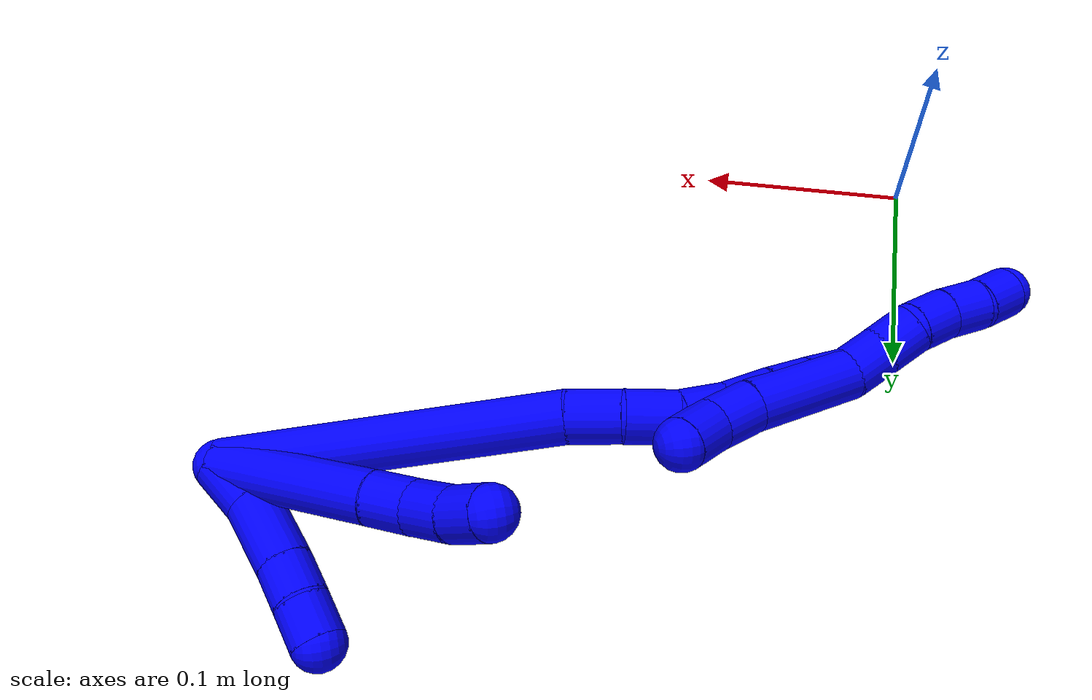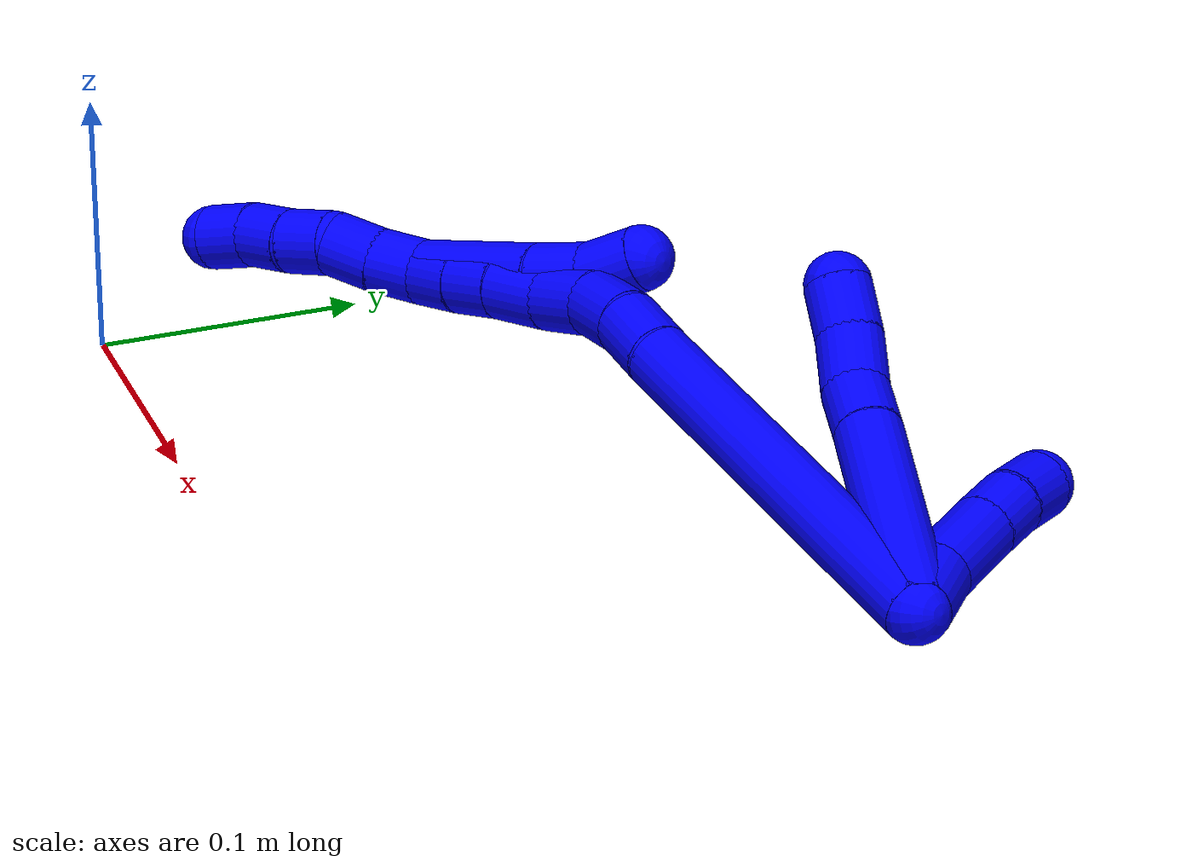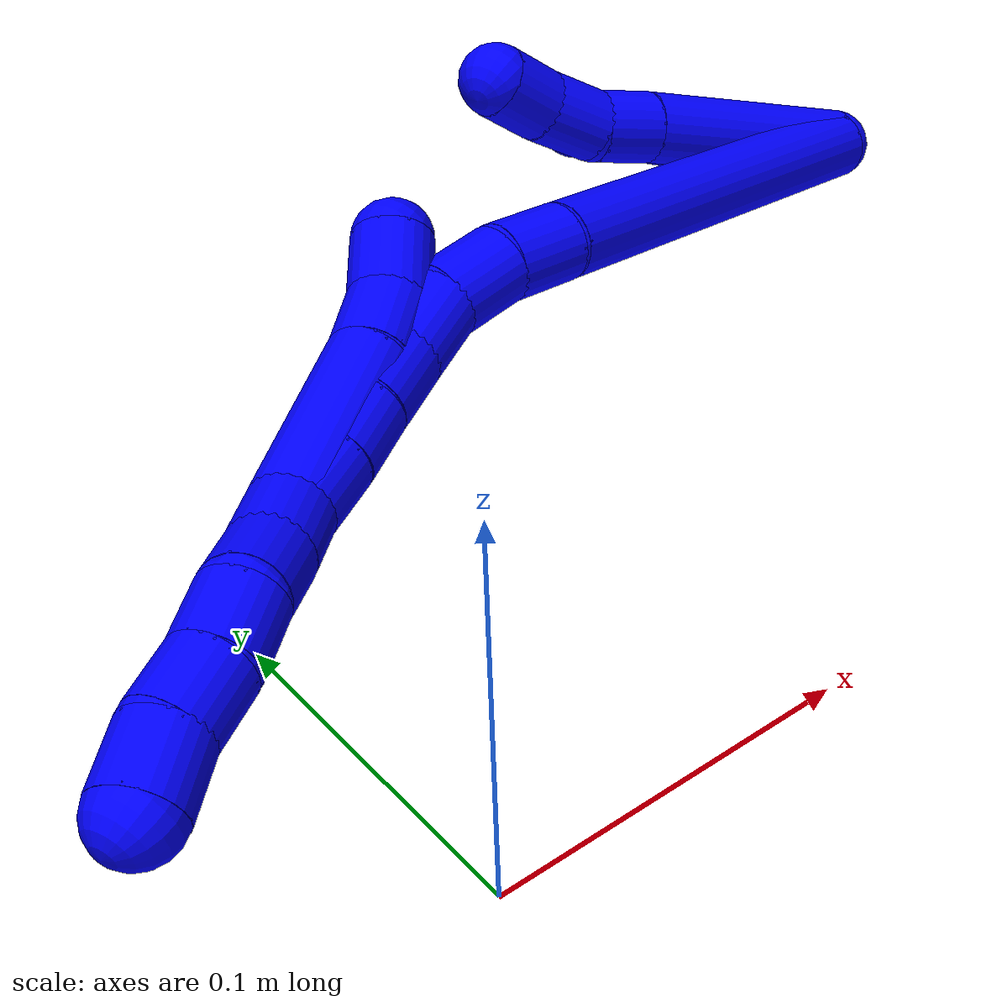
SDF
<sdf version="1.7">
 <world name="default">
  <plugin name="TubeGeneratorPlugin" filename="libtube_generator_plugin.so"/>
  <model name="photoneo_s_sensor">
   <static>1</static>
   <pose>0 0 2 1.57079 1.57079 3.14159</pose>
   <link name="link">
    <inertial><mass>0.1</mass></inertial>
    <sensor name="sensor" type="depth">
     <update_rate>30</update_rate>
     <camera>
      <horizontal_fov>1.22</horizontal_fov>
      <image><width>1920</width><height>1200</height><format>B8G8R8</format></image>
      <clip><near>0.1</near><far>4</far></clip>
      <depth_camera><output>points</output></depth_camera>
     </camera>
     <plugin name="camera_plugin" filename="libgazebo_ros_depth_camera.so">
      <baseline>0.2</baseline>
      <alwaysOn>1</alwaysOn>
      <updateRate>0.0</updateRate>
      <cameraName>camera_ir</cameraName>
      <imageTopicName>/camera/color/image_raw</imageTopicName>
      <cameraInfoTopicName>/camera/color/camera_info</cameraInfoTopicName>
      <depthImageTopicName>/camera/depth/image_raw</depthImageTopicName>
      <depthImageCameraInfoTopicName>/camera/depth/camera_info</depthImageCameraInfoTopicName>
      <pointCloudTopicName>/camera/depth/points</pointCloudTopicName>
      <frameName>fr_optical</frameName>
      <pointCloudCutoff>0.1</pointCloudCutoff>
      <pointCloudCutoffMax>2.0</pointCloudCutoffMax>
      <distortionK1>0</distortionK1>
      <distortionK2>0</distortionK2>
      <distortionK3>0</distortionK3>
      <distortionT1>0</distortionT1>
      <distortionT2>0</distortionT2>
      <CxPrime>0</CxPrime>
      <Cx>0</Cx>
      <Cy>0</Cy>
      <focalLength>0</focalLength>
      <hackBaseline>0</hackBaseline>
     </plugin>
    </sensor>
   </link>
  </model>
  <gravity>0 0 -9.8</gravity>
  <magnetic_field>6e-06 2.3e-05 -4.2e-05</magnetic_field>
  <atmosphere type="adiabatic"/>
  <physics name="default_physics" default="0" type="ode">
   <max_step_size>0.003</max_step_size>
   <real_time_factor>1</real_time_factor>
   <real_time_update_rate>1000</real_time_update_rate>
   <max_contacts>10000</max_contacts>
   <ode>
    <solver>
     <type>quick</type>
     <iters>100</iters>
     <sor>1.3</sor>
     <use_dynamic_moi_rescaling>0</use_dynamic_moi_rescaling>
    </solver>
    <constraints>
     <contact_max_correcting_vel>0</contact_max_correcting_vel>
     <contact_surface_layer>0.001</contact_surface_layer>
     <cfm>0</cfm>
     <erp>0.2</erp>
    </constraints>
   </ode>
  </physics>
  <scene><ambient>0.4 0.4 0.4 1</ambient><background>0.7 0.7 0.7 1</background><shadows>0</shadows></scene>
  <audio><device>default</device></audio>
  <spherical_coordinates>
   <surface_model>EARTH_WGS84</surface_model>
   <latitude_deg>0</latitude_deg>
   <longitude_deg>0</longitude_deg>
   <elevation>0</elevation>
   <heading_deg>0</heading_deg>
  </spherical_coordinates>
  <model name="bin">
   <static>1</static>
   <link name="bottom">
    <collision name="collision-bottom">
     <pose>0 0 -0.01 0 -0 0</pose>
     <geometry><box><size>0.8 0.6 0.02</size></box></geometry>
     <surface>
      <friction><ode><mu>100</mu><mu2>100</mu2></ode></friction>
      <contact><collide_bitmask>65535</collide_bitmask></contact>
     </surface>
    </collision>
   </link>
   <link name="west_wall">
    <collision name="collision-west_wall">
     <pose>-0.41 0 0.1 0 -0 0</pose>
     <geometry><box><size>0.02 0.6 0.2</size></box></geometry>
     <surface>
      <friction><ode><mu>100</mu><mu2>100</mu2></ode></friction>
      <contact><collide_bitmask>65535</collide_bitmask></contact>
     </surface>
    </collision>
   </link>
   <link name="east_wall">
    <collision name="collision-east_wall">
     <pose>0.41 0 0.1 0 -0 0</pose>
     <geometry><box><size>0.02 0.6 0.2</size></box></geometry>
     <surface>
      <friction><ode><mu>100</mu><mu2>100</mu2></ode></friction>
      <contact><collide_bitmask>65535</collide_bitmask></contact>
     </surface>
    </collision>
   </link>
   <link name="south_wall">
    <collision name="collision-south_wall">
     <pose>0 -0.31 0.1 0 -0 0</pose>
     <geometry><box><size>0.8 0.02 0.2</size></box></geometry>
     <surface>
      <friction><ode><mu>100</mu><mu2>100</mu2></ode></friction>
      <contact><collide_bitmask>65535</collide_bitmask></contact>
     </surface>
    </collision>
   </link>
   <link name="north_wall">
    <collision name="collision-north_wall">
     <pose>0 0.31 0.1 0 -0 0</pose>
     <geometry><box><size>0.8 0.02 0.2</size></box></geometry>
     <surface>
      <friction><ode><mu>100</mu><mu2>100</mu2></ode></friction>
      <contact><collide_bitmask>65535</collide_bitmask></contact>
     </surface>
    </collision>
   </link>
  </model>
  <model name="1">
   <static>0</static>
   <link name="1">
    <collision name="collision-cylinder-e_1_2_8">
     <pose>-0.018654 0.023239 -0.029967 -2.48197 -0.457161 1.19385</pose>
     <geometry><cylinder><radius>0.0125</radius><length>0.084523</length></cylinder></geometry>
     <surface>
      <friction><ode><mu>1.16</mu><mu2>1.16</mu2><slip1>0</slip1><slip2>0</slip2></ode></friction>
      <contact><ode><kp>1e+06</kp><kd>1</kd><max_vel>0</max_vel><min_depth>0.001</min_depth></ode></contact>
     </surface>
    </collision>
    <visual name="visual-cylinder-e_1_2_8">
     <pose>-0.018654 0.023239 -0.029967 -2.48197 -0.457161 1.19385</pose>
     <geometry><cylinder><radius>0.0125</radius><length>0.084523</length></cylinder></geometry>
     <material><ambient>0 0 1 1</ambient></material>
    </visual>
    <collision name="collision-cylinder-e_2_8_9">
     <pose>-0.041616 0.052431 -0.068001 -2.50587 -0.405738 1.11747</pose>
     <geometry><cylinder><radius>0.0125</radius><length>0.021823</length></cylinder></geometry>
     <surface>
      <friction><ode><mu>1.16</mu><mu2>1.16</mu2><slip1>0</slip1><slip2>0</slip2></ode></friction>
      <contact><ode><kp>1e+06</kp><kd>1</kd><max_vel>0</max_vel><min_depth>0.001</min_depth></ode></contact>
     </surface>
    </collision>
    <visual name="visual-cylinder-e_2_8_9">
     <pose>-0.041616 0.052431 -0.068001 -2.50587 -0.405738 1.11747</pose>
     <geometry><cylinder><radius>0.0125</radius><length>0.021823</length></cylinder></geometry>
     <material><ambient>0 0 1 1</ambient></material>
    </visual>
    <collision name="collision-cylinder-e_3_9_10">
     <pose>-0.05306 0.064677 -0.082305 -2.35177 -0.678122 1.40451</pose>
     <geometry><cylinder><radius>0.0125</radius><length>0.022754</length></cylinder></geometry>
     <surface>
      <friction><ode><mu>1.16</mu><mu2>1.16</mu2><slip1>0</slip1><slip2>0</slip2></ode></friction>
      <contact><ode><kp>1e+06</kp><kd>1</kd><max_vel>0</max_vel><min_depth>0.001</min_depth></ode></contact>
     </surface>
    </collision>
    <visual name="visual-cylinder-e_3_9_10">
     <pose>-0.05306 0.064677 -0.082305 -2.35177 -0.678122 1.40451</pose>
     <geometry><cylinder><radius>0.0125</radius><length>0.022754</length></cylinder></geometry>
     <material><ambient>0 0 1 1</ambient></material>
    </visual>
    <collision name="collision-cylinder-e_4_10_6">
     <pose>-0.067853 0.075289 -0.094191 -2.48874 -0.822252 1.82108</pose>
     <geometry><cylinder><radius>0.0125</radius><length>0.020899</length></cylinder></geometry>
     <surface>
      <friction><ode><mu>1.16</mu><mu2>1.16</mu2><slip1>0</slip1><slip2>0</slip2></ode></friction>
      <contact><ode><kp>1e+06</kp><kd>1</kd><max_vel>0</max_vel><min_depth>0.001</min_depth></ode></contact>
     </surface>
    </collision>
    <visual name="visual-cylinder-e_4_10_6">
     <pose>-0.067853 0.075289 -0.094191 -2.48874 -0.822252 1.82108</pose>
     <geometry><cylinder><radius>0.0125</radius><length>0.020899</length></cylinder></geometry>
     <material><ambient>0 0 1 1</ambient></material>
    </visual>
    <collision name="collision-cylinder-e_1_2_11">
     <pose>-0.000915 0.011283 -0.005737 -2.04123 -0.072135 0.117524</pose>
     <geometry><cylinder><radius>0.0125</radius><length>0.025382</length></cylinder></geometry>
     <surface>
      <friction><ode><mu>1.16</mu><mu2>1.16</mu2><slip1>0</slip1><slip2>0</slip2></ode></friction>
      <contact><ode><kp>1e+06</kp><kd>1</kd><max_vel>0</max_vel><min_depth>0.001</min_depth></ode></contact>
     </surface>
    </collision>
    <visual name="visual-cylinder-e_1_2_11">
     <pose>-0.000915 0.011283 -0.005737 -2.04123 -0.072135 0.117524</pose>
     <geometry><cylinder><radius>0.0125</radius><length>0.025382</length></cylinder></geometry>
     <material><ambient>0 0 1 1</ambient></material>
    </visual>
    <collision name="collision-cylinder-e_2_11_12">
     <pose>-0.003101 0.039168 -0.016085 -1.84166 -0.073657 0.096866</pose>
     <geometry><cylinder><radius>0.0125</radius><length>0.034555</length></cylinder></geometry>
     <surface>
      <friction><ode><mu>1.16</mu><mu2>1.16</mu2><slip1>0</slip1><slip2>0</slip2></ode></friction>
      <contact><ode><kp>1e+06</kp><kd>1</kd><max_vel>0</max_vel><min_depth>0.001</min_depth></ode></contact>
     </surface>
    </collision>
    <visual name="visual-cylinder-e_2_11_12">
     <pose>-0.003101 0.039168 -0.016085 -1.84166 -0.073657 0.096866</pose>
     <geometry><cylinder><radius>0.0125</radius><length>0.034555</length></cylinder></geometry>
     <material><ambient>0 0 1 1</ambient></material>
    </visual>
    <collision name="collision-cylinder-e_3_12_13">
     <pose>-0.005188 0.065502 -0.022865 -1.7901 -0.081682 0.101861</pose>
     <geometry><cylinder><radius>0.0125</radius><length>0.020007</length></cylinder></geometry>
     <surface>
      <friction><ode><mu>1.16</mu><mu2>1.16</mu2><slip1>0</slip1><slip2>0</slip2></ode></friction>
      <contact><ode><kp>1e+06</kp><kd>1</kd><max_vel>0</max_vel><min_depth>0.001</min_depth></ode></contact>
     </surface>
    </collision>
    <visual name="visual-cylinder-e_3_12_13">
     <pose>-0.005188 0.065502 -0.022865 -1.7901 -0.081682 0.101861</pose>
     <geometry><cylinder><radius>0.0125</radius><length>0.020007</length></cylinder></geometry>
     <material><ambient>0 0 1 1</ambient></material>
    </visual>
    <collision name="collision-cylinder-e_4_13_5">
     <pose>-0.005488 0.084997 -0.027263 -1.79533 0.05155 -0.064642</pose>
     <geometry><cylinder><radius>0.0125</radius><length>0.020056</length></cylinder></geometry>
     <surface>
      <friction><ode><mu>1.16</mu><mu2>1.16</mu2><slip1>0</slip1><slip2>0</slip2></ode></friction>
      <contact><ode><kp>1e+06</kp><kd>1</kd><max_vel>0</max_vel><min_depth>0.001</min_depth></ode></contact>
     </surface>
    </collision>
    <visual name="visual-cylinder-e_4_13_5">
     <pose>-0.005488 0.084997 -0.027263 -1.79533 0.05155 -0.064642</pose>
     <geometry><cylinder><radius>0.0125</radius><length>0.020056</length></cylinder></geometry>
     <material><ambient>0 0 1 1</ambient></material>
    </visual>
    <collision name="collision-cylinder-e_1_2_14">
     <pose>-0.029182 0.016294 -0.073912 -2.92461 -0.367996 2.08257</pose>
     <geometry><cylinder><radius>0.0125</radius><length>0.162235</length></cylinder></geometry>
     <surface>
      <friction><ode><mu>1.16</mu><mu2>1.16</mu2><slip1>0</slip1><slip2>0</slip2></ode></friction>
      <contact><ode><kp>1e+06</kp><kd>1</kd><max_vel>0</max_vel><min_depth>0.001</min_depth></ode></contact>
     </surface>
    </collision>
    <visual name="visual-cylinder-e_1_2_14">
     <pose>-0.029182 0.016294 -0.073912 -2.92461 -0.367996 2.08257</pose>
     <geometry><cylinder><radius>0.0125</radius><length>0.162235</length></cylinder></geometry>
     <material><ambient>0 0 1 1</ambient></material>
    </visual>
    <collision name="collision-cylinder-e_2_14_15">
     <pose>-0.06186 0.036496 -0.159292 -2.81319 -0.280964 1.41301</pose>
     <geometry><cylinder><radius>0.0125</radius><length>0.025221</length></cylinder></geometry>
     <surface>
      <friction><ode><mu>1.16</mu><mu2>1.16</mu2><slip1>0</slip1><slip2>0</slip2></ode></friction>
      <contact><ode><kp>1e+06</kp><kd>1</kd><max_vel>0</max_vel><min_depth>0.001</min_depth></ode></contact>
     </surface>
    </collision>
    <visual name="visual-cylinder-e_2_14_15">
     <pose>-0.06186 0.036496 -0.159292 -2.81319 -0.280964 1.41301</pose>
     <geometry><cylinder><radius>0.0125</radius><length>0.025221</length></cylinder></geometry>
     <material><ambient>0 0 1 1</ambient></material>
    </visual>
    <collision name="collision-cylinder-e_3_15_16">
     <pose>-0.066666 0.043412 -0.182704 -2.89486 -0.105931 0.808065</pose>
     <geometry><cylinder><radius>0.0125</radius><length>0.024772</length></cylinder></geometry>
     <surface>
      <friction><ode><mu>1.16</mu><mu2>1.16</mu2><slip1>0</slip1><slip2>0</slip2></ode></friction>
      <contact><ode><kp>1e+06</kp><kd>1</kd><max_vel>0</max_vel><min_depth>0.001</min_depth></ode></contact>
     </surface>
    </collision>
    <visual name="visual-cylinder-e_3_15_16">
     <pose>-0.066666 0.043412 -0.182704 -2.89486 -0.105931 0.808065</pose>
     <geometry><cylinder><radius>0.0125</radius><length>0.024772</length></cylinder></geometry>
     <material><ambient>0 0 1 1</ambient></material>
    </visual>
    <collision name="collision-cylinder-e_4_16_17">
     <pose>-0.067637 0.046038 -0.206472 3.10934 0.028624 1.45185</pose>
     <geometry><cylinder><radius>0.0125</radius><length>0.02367</length></cylinder></geometry>
     <surface>
      <friction><ode><mu>1.16</mu><mu2>1.16</mu2><slip1>0</slip1><slip2>0</slip2></ode></friction>
      <contact><ode><kp>1e+06</kp><kd>1</kd><max_vel>0</max_vel><min_depth>0.001</min_depth></ode></contact>
     </surface>
    </collision>
    <visual name="visual-cylinder-e_4_16_17">
     <pose>-0.067637 0.046038 -0.206472 3.10934 0.028624 1.45185</pose>
     <geometry><cylinder><radius>0.0125</radius><length>0.02367</length></cylinder></geometry>
     <material><ambient>0 0 1 1</ambient></material>
    </visual>
    <collision name="collision-cylinder-e_5_17_18">
     <pose>-0.068502 0.044159 -0.229839 3.01259 -0.103019 -1.34723</pose>
     <geometry><cylinder><radius>0.0125</radius><length>0.023403</length></cylinder></geometry>
     <surface>
      <friction><ode><mu>1.16</mu><mu2>1.16</mu2><slip1>0</slip1><slip2>0</slip2></ode></friction>
      <contact><ode><kp>1e+06</kp><kd>1</kd><max_vel>0</max_vel><min_depth>0.001</min_depth></ode></contact>
     </surface>
    </collision>
    <visual name="visual-cylinder-e_5_17_18">
     <pose>-0.068502 0.044159 -0.229839 3.01259 -0.103019 -1.34723</pose>
     <geometry><cylinder><radius>0.0125</radius><length>0.023403</length></cylinder></geometry>
     <material><ambient>0 0 1 1</ambient></material>
    </visual>
    <collision name="collision-cylinder-e_6_18_19">
     <pose>-0.069874 0.041561 -0.251455 3.03271 -0.016713 -0.304334</pose>
     <geometry><cylinder><radius>0.0125</radius><length>0.020269</length></cylinder></geometry>
     <surface>
      <friction><ode><mu>1.16</mu><mu2>1.16</mu2><slip1>0</slip1><slip2>0</slip2></ode></friction>
      <contact><ode><kp>1e+06</kp><kd>1</kd><max_vel>0</max_vel><min_depth>0.001</min_depth></ode></contact>
     </surface>
    </collision>
    <visual name="visual-cylinder-e_6_18_19">
     <pose>-0.069874 0.041561 -0.251455 3.03271 -0.016713 -0.304334</pose>
     <geometry><cylinder><radius>0.0125</radius><length>0.020269</length></cylinder></geometry>
     <material><ambient>0 0 1 1</ambient></material>
    </visual>
    <collision name="collision-cylinder-e_7_19_1">
     <pose>-0.070658 0.039862 -0.271707 3.08297 -0.060205 -1.5975</pose>
     <geometry><cylinder><radius>0.0125</radius><length>0.020429</length></cylinder></geometry>
     <surface>
      <friction><ode><mu>1.16</mu><mu2>1.16</mu2><slip1>0</slip1><slip2>0</slip2></ode></friction>
      <contact><ode><kp>1e+06</kp><kd>1</kd><max_vel>0</max_vel><min_depth>0.001</min_depth></ode></contact>
     </surface>
    </collision>
    <visual name="visual-cylinder-e_7_19_1">
     <pose>-0.070658 0.039862 -0.271707 3.08297 -0.060205 -1.5975</pose>
     <geometry><cylinder><radius>0.0125</radius><length>0.020429</length></cylinder></geometry>
     <material><ambient>0 0 1 1</ambient></material>
    </visual>
    <collision name="collision-cylinder-e_1_1_20">
     <pose>-0.073708 0.035888 -0.290978 2.78599 -0.245957 -1.20502</pose>
     <geometry><cylinder><radius>0.0125</radius><length>0.02</length></cylinder></geometry>
     <surface>
      <friction><ode><mu>1.16</mu><mu2>1.16</mu2><slip1>0</slip1><slip2>0</slip2></ode></friction>
      <contact><ode><kp>1e+06</kp><kd>1</kd><max_vel>0</max_vel><min_depth>0.001</min_depth></ode></contact>
     </surface>
    </collision>
    <visual name="visual-cylinder-e_1_1_20">
     <pose>-0.073708 0.035888 -0.290978 2.78599 -0.245957 -1.20502</pose>
     <geometry><cylinder><radius>0.0125</radius><length>0.02</length></cylinder></geometry>
     <material><ambient>0 0 1 1</ambient></material>
    </visual>
    <collision name="collision-cylinder-e_2_20_21">
     <pose>-0.079574 0.029382 -0.308927 2.80194 -0.35023 -1.60209</pose>
     <geometry><cylinder><radius>0.0125</radius><length>0.02</length></cylinder></geometry>
     <surface>
      <friction><ode><mu>1.16</mu><mu2>1.16</mu2><slip1>0</slip1><slip2>0</slip2></ode></friction>
      <contact><ode><kp>1e+06</kp><kd>1</kd><max_vel>0</max_vel><min_depth>0.001</min_depth></ode></contact>
     </surface>
    </collision>
    <visual name="visual-cylinder-e_2_20_21">
     <pose>-0.079574 0.029382 -0.308927 2.80194 -0.35023 -1.60209</pose>
     <geometry><cylinder><radius>0.0125</radius><length>0.02</length></cylinder></geometry>
     <material><ambient>0 0 1 1</ambient></material>
    </visual>
    <collision name="collision-cylinder-e_3_21_22">
     <pose>-0.083121 0.023688 -0.327448 2.88218 -0.01157 -0.088645</pose>
     <geometry><cylinder><radius>0.0125</radius><length>0.02</length></cylinder></geometry>
     <surface>
      <friction><ode><mu>1.16</mu><mu2>1.16</mu2><slip1>0</slip1><slip2>0</slip2></ode></friction>
      <contact><ode><kp>1e+06</kp><kd>1</kd><max_vel>0</max_vel><min_depth>0.001</min_depth></ode></contact>
     </surface>
    </collision>
    <visual name="visual-cylinder-e_3_21_22">
     <pose>-0.083121 0.023688 -0.327448 2.88218 -0.01157 -0.088645</pose>
     <geometry><cylinder><radius>0.0125</radius><length>0.02</length></cylinder></geometry>
     <material><ambient>0 0 1 1</ambient></material>
    </visual>
    <collision name="collision-cylinder-e_4_22_23">
     <pose>-0.083725 0.020089 -0.347047 3.03784 -0.048876 -0.879993</pose>
     <geometry><cylinder><radius>0.0125</radius><length>0.02</length></cylinder></geometry>
     <surface>
      <friction><ode><mu>1.16</mu><mu2>1.16</mu2><slip1>0</slip1><slip2>0</slip2></ode></friction>
      <contact><ode><kp>1e+06</kp><kd>1</kd><max_vel>0</max_vel><min_depth>0.001</min_depth></ode></contact>
     </surface>
    </collision>
    <visual name="visual-cylinder-e_4_22_23">
     <pose>-0.083725 0.020089 -0.347047 3.03784 -0.048876 -0.879993</pose>
     <geometry><cylinder><radius>0.0125</radius><length>0.02</length></cylinder></geometry>
     <material><ambient>0 0 1 1</ambient></material>
    </visual>
    <collision name="collision-cylinder-e_5_23_4">
     <pose>-0.083486 0.016202 -0.366538 2.85153 0.072822 0.488836</pose>
     <geometry><cylinder><radius>0.0125</radius><length>0.02</length></cylinder></geometry>
     <surface>
      <friction><ode><mu>1.16</mu><mu2>1.16</mu2><slip1>0</slip1><slip2>0</slip2></ode></friction>
      <contact><ode><kp>1e+06</kp><kd>1</kd><max_vel>0</max_vel><min_depth>0.001</min_depth></ode></contact>
     </surface>
    </collision>
    <visual name="visual-cylinder-e_5_23_4">
     <pose>-0.083486 0.016202 -0.366538 2.85153 0.072822 0.488836</pose>
     <geometry><cylinder><radius>0.0125</radius><length>0.02</length></cylinder></geometry>
     <material><ambient>0 0 1 1</ambient></material>
    </visual>
    <collision name="collision-cylinder-e_1_1_24">
     <pose>-0.072296 0.044238 -0.254531 -0.17983 -0.036773 0.003316</pose>
     <geometry><cylinder><radius>0.0125</radius><length>0.055645</length></cylinder></geometry>
     <surface>
      <friction><ode><mu>1.16</mu><mu2>1.16</mu2><slip1>0</slip1><slip2>0</slip2></ode></friction>
      <contact><ode><kp>1e+06</kp><kd>1</kd><max_vel>0</max_vel><min_depth>0.001</min_depth></ode></contact>
     </surface>
    </collision>
    <visual name="visual-cylinder-e_1_1_24">
     <pose>-0.072296 0.044238 -0.254531 -0.17983 -0.036773 0.003316</pose>
     <geometry><cylinder><radius>0.0125</radius><length>0.055645</length></cylinder></geometry>
     <material><ambient>0 0 1 1</ambient></material>
    </visual>
    <collision name="collision-cylinder-e_2_24_25">
     <pose>-0.073668 0.052564 -0.216463 -0.303323 -0.031126 0.004758</pose>
     <geometry><cylinder><radius>0.0125</radius><length>0.02246</length></cylinder></geometry>
     <surface>
      <friction><ode><mu>1.16</mu><mu2>1.16</mu2><slip1>0</slip1><slip2>0</slip2></ode></friction>
      <contact><ode><kp>1e+06</kp><kd>1</kd><max_vel>0</max_vel><min_depth>0.001</min_depth></ode></contact>
     </surface>
    </collision>
    <visual name="visual-cylinder-e_2_24_25">
     <pose>-0.073668 0.052564 -0.216463 -0.303323 -0.031126 0.004758</pose>
     <geometry><cylinder><radius>0.0125</radius><length>0.02246</length></cylinder></geometry>
     <material><ambient>0 0 1 1</ambient></material>
    </visual>
    <collision name="collision-cylinder-e_3_25_3">
     <pose>-0.07698 0.060609 -0.196314 -0.461404 -0.274048 0.064753</pose>
     <geometry><cylinder><radius>0.0125</radius><length>0.021895</length></cylinder></geometry>
     <surface>
      <friction><ode><mu>1.16</mu><mu2>1.16</mu2><slip1>0</slip1><slip2>0</slip2></ode></friction>
      <contact><ode><kp>1e+06</kp><kd>1</kd><max_vel>0</max_vel><min_depth>0.001</min_depth></ode></contact>
     </surface>
    </collision>
    <visual name="visual-cylinder-e_3_25_3">
     <pose>-0.07698 0.060609 -0.196314 -0.461404 -0.274048 0.064753</pose>
     <geometry><cylinder><radius>0.0125</radius><length>0.021895</length></cylinder></geometry>
     <material><ambient>0 0 1 1</ambient></material>
    </visual>
    <collision name="collision-sphere-3">
     <pose>-0.079943 0.065301 -0.186877 0 -0 0</pose>
     <geometry><sphere><radius>0.0125</radius></sphere></geometry>
     <surface>
      <friction><ode><mu>1.16</mu><mu2>1.16</mu2><slip1>0</slip1><slip2>0</slip2></ode></friction>
      <contact><ode><kp>1e+06</kp><kd>1</kd><max_vel>0</max_vel><min_depth>0.001</min_depth></ode></contact>
     </surface>
    </collision>
    <visual name="visual-sphere-3">
     <pose>-0.079943 0.065301 -0.186877 0 -0 0</pose>
     <geometry><sphere><radius>0.0125</radius></sphere></geometry>
     <material><ambient>0 0 1 1</ambient></material>
    </visual>
    <collision name="collision-sphere-25">
     <pose>-0.074018 0.055917 -0.205751 0 -0 0</pose>
     <geometry><sphere><radius>0.0125</radius></sphere></geometry>
     <surface>
      <friction><ode><mu>1.16</mu><mu2>1.16</mu2><slip1>0</slip1><slip2>0</slip2></ode></friction>
      <contact><ode><kp>1e+06</kp><kd>1</kd><max_vel>0</max_vel><min_depth>0.001</min_depth></ode></contact>
     </surface>
    </collision>
    <visual name="visual-sphere-25">
     <pose>-0.074018 0.055917 -0.205751 0 -0 0</pose>
     <geometry><sphere><radius>0.0125</radius></sphere></geometry>
     <material><ambient>0 0 1 1</ambient></material>
    </visual>
    <collision name="collision-sphere-24">
     <pose>-0.073319 0.049211 -0.227175 0 -0 0</pose>
     <geometry><sphere><radius>0.0125</radius></sphere></geometry>
     <surface>
      <friction><ode><mu>1.16</mu><mu2>1.16</mu2><slip1>0</slip1><slip2>0</slip2></ode></friction>
      <contact><ode><kp>1e+06</kp><kd>1</kd><max_vel>0</max_vel><min_depth>0.001</min_depth></ode></contact>
     </surface>
    </collision>
    <visual name="visual-sphere-24">
     <pose>-0.073319 0.049211 -0.227175 0 -0 0</pose>
     <geometry><sphere><radius>0.0125</radius></sphere></geometry>
     <material><ambient>0 0 1 1</ambient></material>
    </visual>
    <collision name="collision-sphere-4">
     <pose>-0.082758 0.013349 -0.376095 0 -0 0</pose>
     <geometry><sphere><radius>0.0125</radius></sphere></geometry>
     <surface>
      <friction><ode><mu>1.16</mu><mu2>1.16</mu2><slip1>0</slip1><slip2>0</slip2></ode></friction>
      <contact><ode><kp>1e+06</kp><kd>1</kd><max_vel>0</max_vel><min_depth>0.001</min_depth></ode></contact>
     </surface>
    </collision>
    <visual name="visual-sphere-4">
     <pose>-0.082758 0.013349 -0.376095 0 -0 0</pose>
     <geometry><sphere><radius>0.0125</radius></sphere></geometry>
     <material><ambient>0 0 1 1</ambient></material>
    </visual>
    <collision name="collision-sphere-23">
     <pose>-0.084213 0.019054 -0.356981 0 -0 0</pose>
     <geometry><sphere><radius>0.0125</radius></sphere></geometry>
     <surface>
      <friction><ode><mu>1.16</mu><mu2>1.16</mu2><slip1>0</slip1><slip2>0</slip2></ode></friction>
      <contact><ode><kp>1e+06</kp><kd>1</kd><max_vel>0</max_vel><min_depth>0.001</min_depth></ode></contact>
     </surface>
    </collision>
    <visual name="visual-sphere-23">
     <pose>-0.084213 0.019054 -0.356981 0 -0 0</pose>
     <geometry><sphere><radius>0.0125</radius></sphere></geometry>
     <material><ambient>0 0 1 1</ambient></material>
    </visual>
    <collision name="collision-sphere-22">
     <pose>-0.083236 0.021123 -0.337113 0 -0 0</pose>
     <geometry><sphere><radius>0.0125</radius></sphere></geometry>
     <surface>
      <friction><ode><mu>1.16</mu><mu2>1.16</mu2><slip1>0</slip1><slip2>0</slip2></ode></friction>
      <contact><ode><kp>1e+06</kp><kd>1</kd><max_vel>0</max_vel><min_depth>0.001</min_depth></ode></contact>
     </surface>
    </collision>
    <visual name="visual-sphere-22">
     <pose>-0.083236 0.021123 -0.337113 0 -0 0</pose>
     <geometry><sphere><radius>0.0125</radius></sphere></geometry>
     <material><ambient>0 0 1 1</ambient></material>
    </visual>
    <collision name="collision-sphere-21">
     <pose>-0.083005 0.026253 -0.317783 0 -0 0</pose>
     <geometry><sphere><radius>0.0125</radius></sphere></geometry>
     <surface>
      <friction><ode><mu>1.16</mu><mu2>1.16</mu2><slip1>0</slip1><slip2>0</slip2></ode></friction>
      <contact><ode><kp>1e+06</kp><kd>1</kd><max_vel>0</max_vel><min_depth>0.001</min_depth></ode></contact>
     </surface>
    </collision>
    <visual name="visual-sphere-21">
     <pose>-0.083005 0.026253 -0.317783 0 -0 0</pose>
     <geometry><sphere><radius>0.0125</radius></sphere></geometry>
     <material><ambient>0 0 1 1</ambient></material>
    </visual>
    <collision name="collision-sphere-20">
     <pose>-0.076143 0.032512 -0.30007 0 -0 0</pose>
     <geometry><sphere><radius>0.0125</radius></sphere></geometry>
     <surface>
      <friction><ode><mu>1.16</mu><mu2>1.16</mu2><slip1>0</slip1><slip2>0</slip2></ode></friction>
      <contact><ode><kp>1e+06</kp><kd>1</kd><max_vel>0</max_vel><min_depth>0.001</min_depth></ode></contact>
     </surface>
    </collision>
    <visual name="visual-sphere-20">
     <pose>-0.076143 0.032512 -0.30007 0 -0 0</pose>
     <geometry><sphere><radius>0.0125</radius></sphere></geometry>
     <material><ambient>0 0 1 1</ambient></material>
    </visual>
    <collision name="collision-sphere-11">
     <pose>-0.001829 0.022566 -0.011475 0 -0 0</pose>
     <geometry><sphere><radius>0.0125</radius></sphere></geometry>
     <surface>
      <friction><ode><mu>1.16</mu><mu2>1.16</mu2><slip1>0</slip1><slip2>0</slip2></ode></friction>
      <contact><ode><kp>1e+06</kp><kd>1</kd><max_vel>0</max_vel><min_depth>0.001</min_depth></ode></contact>
     </surface>
    </collision>
    <visual name="visual-sphere-11">
     <pose>-0.001829 0.022566 -0.011475 0 -0 0</pose>
     <geometry><sphere><radius>0.0125</radius></sphere></geometry>
     <material><ambient>0 0 1 1</ambient></material>
    </visual>
    <collision name="collision-sphere-6">
     <pose>-0.075509 0.079609 -0.09984 0 -0 0</pose>
     <geometry><sphere><radius>0.0125</radius></sphere></geometry>
     <surface>
      <friction><ode><mu>1.16</mu><mu2>1.16</mu2><slip1>0</slip1><slip2>0</slip2></ode></friction>
      <contact><ode><kp>1e+06</kp><kd>1</kd><max_vel>0</max_vel><min_depth>0.001</min_depth></ode></contact>
     </surface>
    </collision>
    <visual name="visual-sphere-6">
     <pose>-0.075509 0.079609 -0.09984 0 -0 0</pose>
     <geometry><sphere><radius>0.0125</radius></sphere></geometry>
     <material><ambient>0 0 1 1</ambient></material>
    </visual>
    <collision name="collision-sphere-10">
     <pose>-0.060197 0.070969 -0.088542 0 -0 0</pose>
     <geometry><sphere><radius>0.0125</radius></sphere></geometry>
     <surface>
      <friction><ode><mu>1.16</mu><mu2>1.16</mu2><slip1>0</slip1><slip2>0</slip2></ode></friction>
      <contact><ode><kp>1e+06</kp><kd>1</kd><max_vel>0</max_vel><min_depth>0.001</min_depth></ode></contact>
     </surface>
    </collision>
    <visual name="visual-sphere-10">
     <pose>-0.060197 0.070969 -0.088542 0 -0 0</pose>
     <geometry><sphere><radius>0.0125</radius></sphere></geometry>
     <material><ambient>0 0 1 1</ambient></material>
    </visual>
    <collision name="collision-sphere-9">
     <pose>-0.045922 0.058384 -0.076068 0 -0 0</pose>
     <geometry><sphere><radius>0.0125</radius></sphere></geometry>
     <surface>
      <friction><ode><mu>1.16</mu><mu2>1.16</mu2><slip1>0</slip1><slip2>0</slip2></ode></friction>
      <contact><ode><kp>1e+06</kp><kd>1</kd><max_vel>0</max_vel><min_depth>0.001</min_depth></ode></contact>
     </surface>
    </collision>
    <visual name="visual-sphere-9">
     <pose>-0.045922 0.058384 -0.076068 0 -0 0</pose>
     <geometry><sphere><radius>0.0125</radius></sphere></geometry>
     <material><ambient>0 0 1 1</ambient></material>
    </visual>
    <collision name="collision-sphere-2">
     <geometry><sphere><radius>0.0125</radius></sphere></geometry>
     <surface>
      <friction><ode><mu>1.16</mu><mu2>1.16</mu2><slip1>0</slip1><slip2>0</slip2></ode></friction>
      <contact><ode><kp>1e+06</kp><kd>1</kd><max_vel>0</max_vel><min_depth>0.001</min_depth></ode></contact>
     </surface>
    </collision>
    <visual name="visual-sphere-2">
     <geometry><sphere><radius>0.0125</radius></sphere></geometry>
     <material><ambient>0 0 1 1</ambient></material>
    </visual>
    <collision name="collision-sphere-19">
     <pose>-0.070044 0.04046 -0.261528 0 -0 0</pose>
     <geometry><sphere><radius>0.0125</radius></sphere></geometry>
     <surface>
      <friction><ode><mu>1.16</mu><mu2>1.16</mu2><slip1>0</slip1><slip2>0</slip2></ode></friction>
      <contact><ode><kp>1e+06</kp><kd>1</kd><max_vel>0</max_vel><min_depth>0.001</min_depth></ode></contact>
     </surface>
    </collision>
    <visual name="visual-sphere-19">
     <pose>-0.070044 0.04046 -0.261528 0 -0 0</pose>
     <geometry><sphere><radius>0.0125</radius></sphere></geometry>
     <material><ambient>0 0 1 1</ambient></material>
    </visual>
    <collision name="collision-sphere-8">
     <pose>-0.037309 0.046478 -0.059933 0 -0 0</pose>
     <geometry><sphere><radius>0.0125</radius></sphere></geometry>
     <surface>
      <friction><ode><mu>1.16</mu><mu2>1.16</mu2><slip1>0</slip1><slip2>0</slip2></ode></friction>
      <contact><ode><kp>1e+06</kp><kd>1</kd><max_vel>0</max_vel><min_depth>0.001</min_depth></ode></contact>
     </surface>
    </collision>
    <visual name="visual-sphere-8">
     <pose>-0.037309 0.046478 -0.059933 0 -0 0</pose>
     <geometry><sphere><radius>0.0125</radius></sphere></geometry>
     <material><ambient>0 0 1 1</ambient></material>
    </visual>
    <collision name="collision-sphere-12">
     <pose>-0.004372 0.055771 -0.020696 0 -0 0</pose>
     <geometry><sphere><radius>0.0125</radius></sphere></geometry>
     <surface>
      <friction><ode><mu>1.16</mu><mu2>1.16</mu2><slip1>0</slip1><slip2>0</slip2></ode></friction>
      <contact><ode><kp>1e+06</kp><kd>1</kd><max_vel>0</max_vel><min_depth>0.001</min_depth></ode></contact>
     </surface>
    </collision>
    <visual name="visual-sphere-12">
     <pose>-0.004372 0.055771 -0.020696 0 -0 0</pose>
     <geometry><sphere><radius>0.0125</radius></sphere></geometry>
     <material><ambient>0 0 1 1</ambient></material>
    </visual>
    <collision name="collision-sphere-13">
     <pose>-0.006005 0.075233 -0.025034 0 -0 0</pose>
     <geometry><sphere><radius>0.0125</radius></sphere></geometry>
     <surface>
      <friction><ode><mu>1.16</mu><mu2>1.16</mu2><slip1>0</slip1><slip2>0</slip2></ode></friction>
      <contact><ode><kp>1e+06</kp><kd>1</kd><max_vel>0</max_vel><min_depth>0.001</min_depth></ode></contact>
     </surface>
    </collision>
    <visual name="visual-sphere-13">
     <pose>-0.006005 0.075233 -0.025034 0 -0 0</pose>
     <geometry><sphere><radius>0.0125</radius></sphere></geometry>
     <material><ambient>0 0 1 1</ambient></material>
    </visual>
    <collision name="collision-sphere-5">
     <pose>-0.004971 0.09476 -0.029493 0 -0 0</pose>
     <geometry><sphere><radius>0.0125</radius></sphere></geometry>
     <surface>
      <friction><ode><mu>1.16</mu><mu2>1.16</mu2><slip1>0</slip1><slip2>0</slip2></ode></friction>
      <contact><ode><kp>1e+06</kp><kd>1</kd><max_vel>0</max_vel><min_depth>0.001</min_depth></ode></contact>
     </surface>
    </collision>
    <visual name="visual-sphere-5">
     <pose>-0.004971 0.09476 -0.029493 0 -0 0</pose>
     <geometry><sphere><radius>0.0125</radius></sphere></geometry>
     <material><ambient>0 0 1 1</ambient></material>
    </visual>
    <collision name="collision-sphere-14">
     <pose>-0.058363 0.032588 -0.147824 0 -0 0</pose>
     <geometry><sphere><radius>0.0125</radius></sphere></geometry>
     <surface>
      <friction><ode><mu>1.16</mu><mu2>1.16</mu2><slip1>0</slip1><slip2>0</slip2></ode></friction>
      <contact><ode><kp>1e+06</kp><kd>1</kd><max_vel>0</max_vel><min_depth>0.001</min_depth></ode></contact>
     </surface>
    </collision>
    <visual name="visual-sphere-14">
     <pose>-0.058363 0.032588 -0.147824 0 -0 0</pose>
     <geometry><sphere><radius>0.0125</radius></sphere></geometry>
     <material><ambient>0 0 1 1</ambient></material>
    </visual>
    <collision name="collision-sphere-15">
     <pose>-0.065356 0.040403 -0.17076 0 -0 0</pose>
     <geometry><sphere><radius>0.0125</radius></sphere></geometry>
     <surface>
      <friction><ode><mu>1.16</mu><mu2>1.16</mu2><slip1>0</slip1><slip2>0</slip2></ode></friction>
      <contact><ode><kp>1e+06</kp><kd>1</kd><max_vel>0</max_vel><min_depth>0.001</min_depth></ode></contact>
     </surface>
    </collision>
    <visual name="visual-sphere-15">
     <pose>-0.065356 0.040403 -0.17076 0 -0 0</pose>
     <geometry><sphere><radius>0.0125</radius></sphere></geometry>
     <material><ambient>0 0 1 1</ambient></material>
    </visual>
    <collision name="collision-sphere-16">
     <pose>-0.067976 0.04642 -0.194648 0 -0 0</pose>
     <geometry><sphere><radius>0.0125</radius></sphere></geometry>
     <surface>
      <friction><ode><mu>1.16</mu><mu2>1.16</mu2><slip1>0</slip1><slip2>0</slip2></ode></friction>
      <contact><ode><kp>1e+06</kp><kd>1</kd><max_vel>0</max_vel><min_depth>0.001</min_depth></ode></contact>
     </surface>
    </collision>
    <visual name="visual-sphere-16">
     <pose>-0.067976 0.04642 -0.194648 0 -0 0</pose>
     <geometry><sphere><radius>0.0125</radius></sphere></geometry>
     <material><ambient>0 0 1 1</ambient></material>
    </visual>
    <collision name="collision-sphere-17">
     <pose>-0.067298 0.045657 -0.218296 0 -0 0</pose>
     <geometry><sphere><radius>0.0125</radius></sphere></geometry>
     <surface>
      <friction><ode><mu>1.16</mu><mu2>1.16</mu2><slip1>0</slip1><slip2>0</slip2></ode></friction>
      <contact><ode><kp>1e+06</kp><kd>1</kd><max_vel>0</max_vel><min_depth>0.001</min_depth></ode></contact>
     </surface>
    </collision>
    <visual name="visual-sphere-17">
     <pose>-0.067298 0.045657 -0.218296 0 -0 0</pose>
     <geometry><sphere><radius>0.0125</radius></sphere></geometry>
     <material><ambient>0 0 1 1</ambient></material>
    </visual>
    <collision name="collision-sphere-18">
     <pose>-0.069705 0.042662 -0.241382 0 -0 0</pose>
     <geometry><sphere><radius>0.0125</radius></sphere></geometry>
     <surface>
      <friction><ode><mu>1.16</mu><mu2>1.16</mu2><slip1>0</slip1><slip2>0</slip2></ode></friction>
      <contact><ode><kp>1e+06</kp><kd>1</kd><max_vel>0</max_vel><min_depth>0.001</min_depth></ode></contact>
     </surface>
    </collision>
    <visual name="visual-sphere-18">
     <pose>-0.069705 0.042662 -0.241382 0 -0 0</pose>
     <geometry><sphere><radius>0.0125</radius></sphere></geometry>
     <material><ambient>0 0 1 1</ambient></material>
    </visual>
    <collision name="collision-sphere-1">
     <pose>-0.071273 0.039265 -0.281886 0 -0 0</pose>
     <geometry><sphere><radius>0.0125</radius></sphere></geometry>
     <surface>
      <friction><ode><mu>1.16</mu><mu2>1.16</mu2><slip1>0</slip1><slip2>0</slip2></ode></friction>
      <contact><ode><kp>1e+06</kp><kd>1</kd><max_vel>0</max_vel><min_depth>0.001</min_depth></ode></contact>
     </surface>
    </collision>
    <visual name="visual-sphere-1">
     <pose>-0.071273 0.039265 -0.281886 0 -0 0</pose>
     <geometry><sphere><radius>0.0125</radius></sphere></geometry>
     <material><ambient>0 0 1 1</ambient></material>
    </visual>
    <inertial>
     <pose>-0.046533 0.035603 -0.142873 0 -0 0</pose>
     <mass>0.75</mass>
     <inertia><ixx>0.00022</ixx><ixy>0</ixy><ixz>0</ixz><iyy>0.000566</iyy><iyz>0</iyz><izz>1.1e-05</izz></inertia>
    </inertial>
   </link>
   <pose>0.30777 0.197504 0.01236 0.080078 1.35107 0.477959</pose>
  </model>
 </world>
</sdf>
